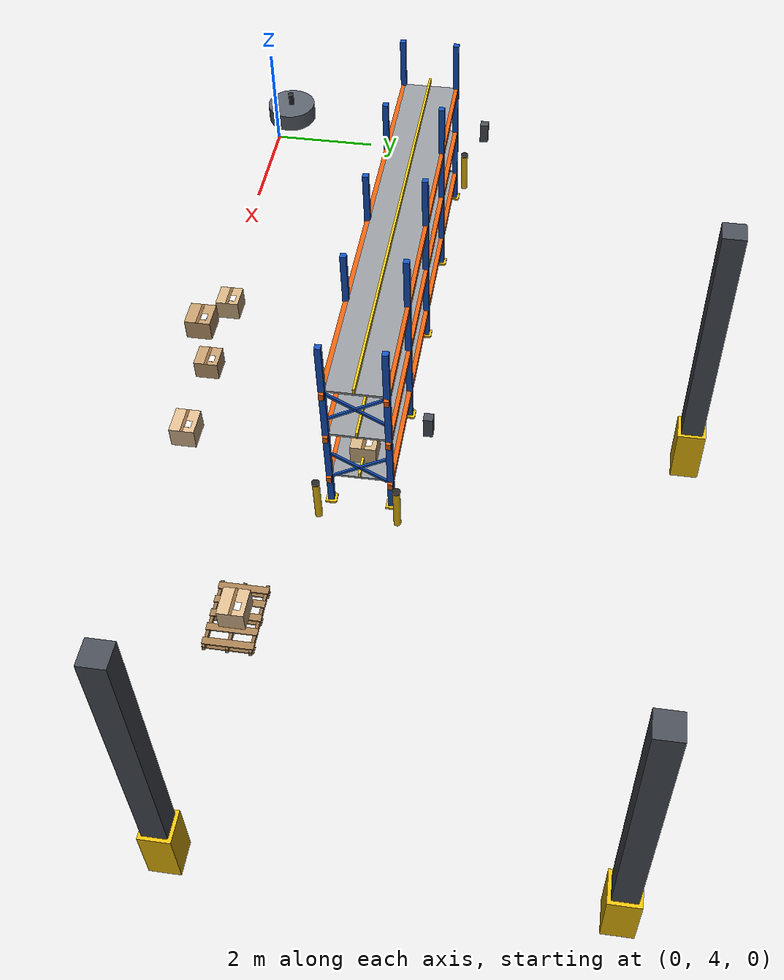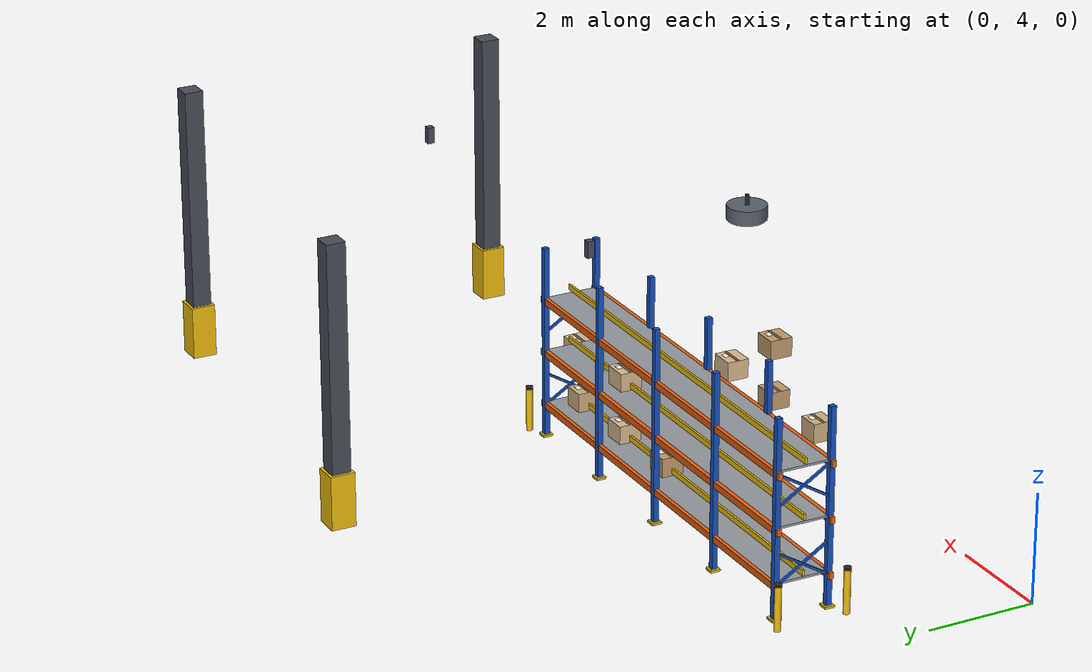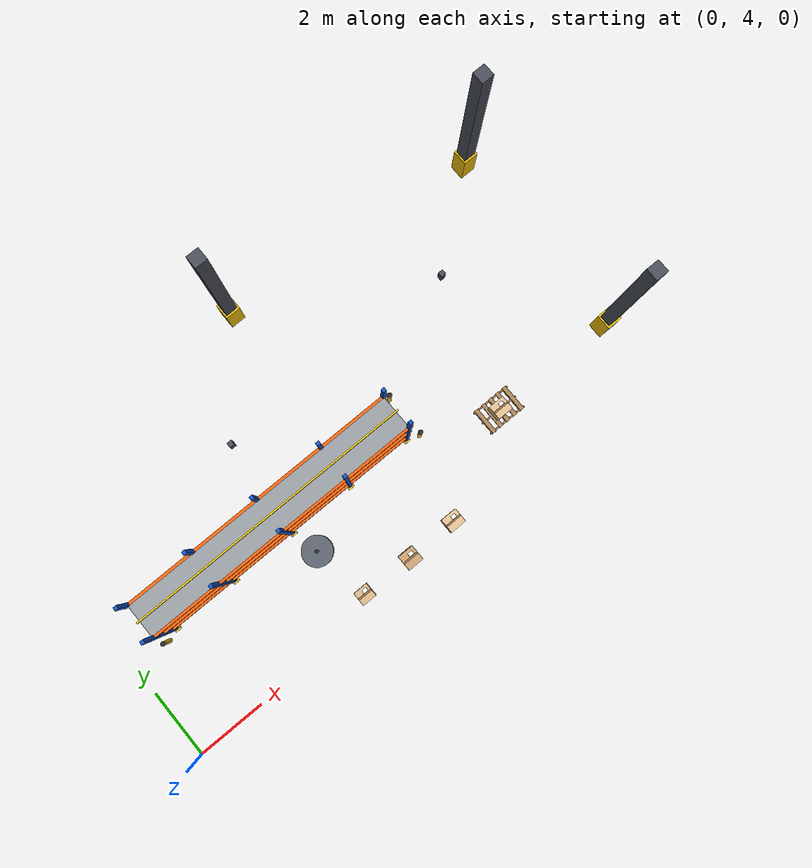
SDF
<sdf version="1.8">
 <world name="warehouse_3d">
  <model name="warehouse_architecture">
   <static>true</static>
   <link name="col_7_base">
    <pose>15.7500 6.0000 0.5000 0.0000 0.0000 0.0000</pose>
    <collision name="col_7_base_col"><geometry><box><size>0.4500 0.4500 1.0000</size></box></geometry></collision>
    <visual name="col_7_base_vis">
     <geometry><box><size>0.4500 0.4500 1.0000</size></box></geometry>
     <material>
      <ambient>0.617 0.488 0.033 1.00</ambient>
      <diffuse>0.950 0.750 0.050 1.00</diffuse>
      <specular>0.15 0.15 0.15 1.0</specular>
     </material>
    </visual>
   </link>
   <link name="col_7_stem">
    <pose>15.7500 6.0000 3.1000 0.0000 0.0000 0.0000</pose>
    <collision name="col_7_stem_col"><geometry><box><size>0.3500 0.3500 4.2000</size></box></geometry></collision>
    <visual name="col_7_stem_vis">
     <geometry><box><size>0.3500 0.3500 4.2000</size></box></geometry>
     <material>
      <ambient>0.182 0.195 0.221 1.00</ambient>
      <diffuse>0.280 0.300 0.340 1.00</diffuse>
      <specular>0.15 0.15 0.15 1.0</specular>
     </material>
    </visual>
   </link>
   <link name="col_8_base">
    <pose>15.7500 12.0000 0.5000 0.0000 0.0000 0.0000</pose>
    <collision name="col_8_base_col"><geometry><box><size>0.4500 0.4500 1.0000</size></box></geometry></collision>
    <visual name="col_8_base_vis">
     <geometry><box><size>0.4500 0.4500 1.0000</size></box></geometry>
     <material>
      <ambient>0.617 0.488 0.033 1.00</ambient>
      <diffuse>0.950 0.750 0.050 1.00</diffuse>
      <specular>0.15 0.15 0.15 1.0</specular>
     </material>
    </visual>
   </link>
   <link name="col_8_stem">
    <pose>15.7500 12.0000 3.1000 0.0000 0.0000 0.0000</pose>
    <collision name="col_8_stem_col"><geometry><box><size>0.3500 0.3500 4.2000</size></box></geometry></collision>
    <visual name="col_8_stem_vis">
     <geometry><box><size>0.3500 0.3500 4.2000</size></box></geometry>
     <material>
      <ambient>0.182 0.195 0.221 1.00</ambient>
      <diffuse>0.280 0.300 0.340 1.00</diffuse>
      <specular>0.15 0.15 0.15 1.0</specular>
     </material>
    </visual>
   </link>
   <link name="col_11_base">
    <pose>8.0000 12.7500 0.5000 0.0000 0.0000 0.0000</pose>
    <collision name="col_11_base_col">
     <geometry><box><size>0.4500 0.4500 1.0000</size></box></geometry>
    </collision>
    <visual name="col_11_base_vis">
     <geometry><box><size>0.4500 0.4500 1.0000</size></box></geometry>
     <material>
      <ambient>0.617 0.488 0.033 1.00</ambient>
      <diffuse>0.950 0.750 0.050 1.00</diffuse>
      <specular>0.15 0.15 0.15 1.0</specular>
     </material>
    </visual>
   </link>
   <link name="col_11_stem">
    <pose>8.0000 12.7500 3.1000 0.0000 0.0000 0.0000</pose>
    <collision name="col_11_stem_col">
     <geometry><box><size>0.3500 0.3500 4.2000</size></box></geometry>
    </collision>
    <visual name="col_11_stem_vis">
     <geometry><box><size>0.3500 0.3500 4.2000</size></box></geometry>
     <material>
      <ambient>0.182 0.195 0.221 1.00</ambient>
      <diffuse>0.280 0.300 0.340 1.00</diffuse>
      <specular>0.15 0.15 0.15 1.0</specular>
     </material>
    </visual>
   </link>
   <link name="truss_web_3_3">
    <pose>6.0000 9.0000 5.0500 0.0000 0.0000 0.0000</pose>
    <visual name="truss_web_3_3_vis">
     <geometry><box><size>0.1200 0.1200 0.3000</size></box></geometry>
     <material>
      <ambient>0.182 0.195 0.221 1.00</ambient>
      <diffuse>0.280 0.300 0.340 1.00</diffuse>
      <specular>0.15 0.15 0.15 1.0</specular>
     </material>
    </visual>
   </link>
   <link name="truss_web_3_4">
    <pose>12.0000 9.0000 5.0500 0.0000 0.0000 0.0000</pose>
    <visual name="truss_web_3_4_vis">
     <geometry><box><size>0.1200 0.1200 0.3000</size></box></geometry>
     <material>
      <ambient>0.182 0.195 0.221 1.00</ambient>
      <diffuse>0.280 0.300 0.340 1.00</diffuse>
      <specular>0.15 0.15 0.15 1.0</specular>
     </material>
    </visual>
   </link>
   <link name="fixture_bell_8">
    <pose>6.0000 6.0000 5.1500 0.0000 0.0000 0.0000</pose>
    <visual name="fixture_bell_8_vis">
     <geometry><cylinder><radius>0.3500</radius><length>0.2500</length></cylinder></geometry>
     <material>
      <ambient>0.227 0.247 0.273 1.00</ambient>
      <diffuse>0.350 0.380 0.420 1.00</diffuse>
      <specular>0.2 0.2 0.2 1.0</specular>
     </material>
    </visual>
   </link>
   <link name="fixture_stem_8">
    <pose>6.0000 6.0000 5.3500 0.0000 0.0000 0.0000</pose>
    <visual name="fixture_stem_8_vis">
     <geometry><cylinder><radius>0.0400</radius><length>0.2000</length></cylinder></geometry>
     <material>
      <ambient>0.098 0.098 0.117 1.00</ambient>
      <diffuse>0.150 0.150 0.180 1.00</diffuse>
      <specular>0.2 0.2 0.2 1.0</specular>
     </material>
    </visual>
   </link>
   <link name="fixture_lens_8">
    <pose>6.0000 6.0000 5.0200 0.0000 0.0000 0.0000</pose>
    <visual name="fixture_lens_8_vis">
     <geometry><cylinder><radius>0.3200</radius><length>0.0400</length></cylinder></geometry>
     <material>
      <ambient>0.617 0.637 0.650 1.00</ambient>
      <diffuse>0.950 0.980 1.000 1.00</diffuse>
      <specular>0.2 0.2 0.2 1.0</specular>
      <emissive>0.850 0.880 0.950 1.0</emissive>
     </material>
    </visual>
   </link>
  </model>
  <model name="Rack_F_East">
   <static>true</static>
   <pose>5.50 7.50 0 0 0 0</pose>
   <link name="col_0_0">
    <pose>-4.0000 -0.5000 1.8000 0.0000 0.0000 0.0000</pose>
    <collision name="col_0_0_col"><geometry><box><size>0.1000 0.1000 3.6000</size></box></geometry></collision>
    <visual name="col_0_0_vis">
     <geometry><box><size>0.1000 0.1000 3.6000</size></box></geometry>
     <material>
      <ambient>0.052 0.208 0.488 1.00</ambient>
      <diffuse>0.080 0.320 0.750 1.00</diffuse>
      <specular>0.15 0.15 0.15 1.0</specular>
     </material>
    </visual>
   </link>
   <link name="foot_0_0">
    <pose>-4.0000 -0.5000 0.0200 0.0000 0.0000 0.0000</pose>
    <collision name="foot_0_0_col"><geometry><box><size>0.1800 0.1800 0.0400</size></box></geometry></collision>
    <visual name="foot_0_0_vis">
     <geometry><box><size>0.1800 0.1800 0.0400</size></box></geometry>
     <material>
      <ambient>0.617 0.488 0.033 1.00</ambient>
      <diffuse>0.950 0.750 0.050 1.00</diffuse>
      <specular>0.15 0.15 0.15 1.0</specular>
     </material>
    </visual>
   </link>
   <link name="col_0_1">
    <pose>-4.0000 0.5000 1.8000 0.0000 0.0000 0.0000</pose>
    <collision name="col_0_1_col"><geometry><box><size>0.1000 0.1000 3.6000</size></box></geometry></collision>
    <visual name="col_0_1_vis">
     <geometry><box><size>0.1000 0.1000 3.6000</size></box></geometry>
     <material>
      <ambient>0.052 0.208 0.488 1.00</ambient>
      <diffuse>0.080 0.320 0.750 1.00</diffuse>
      <specular>0.15 0.15 0.15 1.0</specular>
     </material>
    </visual>
   </link>
   <link name="foot_0_1">
    <pose>-4.0000 0.5000 0.0200 0.0000 0.0000 0.0000</pose>
    <collision name="foot_0_1_col"><geometry><box><size>0.1800 0.1800 0.0400</size></box></geometry></collision>
    <visual name="foot_0_1_vis">
     <geometry><box><size>0.1800 0.1800 0.0400</size></box></geometry>
     <material>
      <ambient>0.617 0.488 0.033 1.00</ambient>
      <diffuse>0.950 0.750 0.050 1.00</diffuse>
      <specular>0.15 0.15 0.15 1.0</specular>
     </material>
    </visual>
   </link>
   <link name="col_1_0">
    <pose>-2.0000 -0.5000 1.8000 0.0000 0.0000 0.0000</pose>
    <collision name="col_1_0_col"><geometry><box><size>0.1000 0.1000 3.6000</size></box></geometry></collision>
    <visual name="col_1_0_vis">
     <geometry><box><size>0.1000 0.1000 3.6000</size></box></geometry>
     <material>
      <ambient>0.052 0.208 0.488 1.00</ambient>
      <diffuse>0.080 0.320 0.750 1.00</diffuse>
      <specular>0.15 0.15 0.15 1.0</specular>
     </material>
    </visual>
   </link>
   <link name="foot_1_0">
    <pose>-2.0000 -0.5000 0.0200 0.0000 0.0000 0.0000</pose>
    <collision name="foot_1_0_col"><geometry><box><size>0.1800 0.1800 0.0400</size></box></geometry></collision>
    <visual name="foot_1_0_vis">
     <geometry><box><size>0.1800 0.1800 0.0400</size></box></geometry>
     <material>
      <ambient>0.617 0.488 0.033 1.00</ambient>
      <diffuse>0.950 0.750 0.050 1.00</diffuse>
      <specular>0.15 0.15 0.15 1.0</specular>
     </material>
    </visual>
   </link>
   <link name="col_1_1">
    <pose>-2.0000 0.5000 1.8000 0.0000 0.0000 0.0000</pose>
    <collision name="col_1_1_col"><geometry><box><size>0.1000 0.1000 3.6000</size></box></geometry></collision>
    <visual name="col_1_1_vis">
     <geometry><box><size>0.1000 0.1000 3.6000</size></box></geometry>
     <material>
      <ambient>0.052 0.208 0.488 1.00</ambient>
      <diffuse>0.080 0.320 0.750 1.00</diffuse>
      <specular>0.15 0.15 0.15 1.0</specular>
     </material>
    </visual>
   </link>
   <link name="foot_1_1">
    <pose>-2.0000 0.5000 0.0200 0.0000 0.0000 0.0000</pose>
    <collision name="foot_1_1_col"><geometry><box><size>0.1800 0.1800 0.0400</size></box></geometry></collision>
    <visual name="foot_1_1_vis">
     <geometry><box><size>0.1800 0.1800 0.0400</size></box></geometry>
     <material>
      <ambient>0.617 0.488 0.033 1.00</ambient>
      <diffuse>0.950 0.750 0.050 1.00</diffuse>
      <specular>0.15 0.15 0.15 1.0</specular>
     </material>
    </visual>
   </link>
   <link name="col_2_0">
    <pose>0.0000 -0.5000 1.8000 0.0000 0.0000 0.0000</pose>
    <collision name="col_2_0_col"><geometry><box><size>0.1000 0.1000 3.6000</size></box></geometry></collision>
    <visual name="col_2_0_vis">
     <geometry><box><size>0.1000 0.1000 3.6000</size></box></geometry>
     <material>
      <ambient>0.052 0.208 0.488 1.00</ambient>
      <diffuse>0.080 0.320 0.750 1.00</diffuse>
      <specular>0.15 0.15 0.15 1.0</specular>
     </material>
    </visual>
   </link>
   <link name="foot_2_0">
    <pose>0.0000 -0.5000 0.0200 0.0000 0.0000 0.0000</pose>
    <collision name="foot_2_0_col"><geometry><box><size>0.1800 0.1800 0.0400</size></box></geometry></collision>
    <visual name="foot_2_0_vis">
     <geometry><box><size>0.1800 0.1800 0.0400</size></box></geometry>
     <material>
      <ambient>0.617 0.488 0.033 1.00</ambient>
      <diffuse>0.950 0.750 0.050 1.00</diffuse>
      <specular>0.15 0.15 0.15 1.0</specular>
     </material>
    </visual>
   </link>
   <link name="col_2_1">
    <pose>0.0000 0.5000 1.8000 0.0000 0.0000 0.0000</pose>
    <collision name="col_2_1_col"><geometry><box><size>0.1000 0.1000 3.6000</size></box></geometry></collision>
    <visual name="col_2_1_vis">
     <geometry><box><size>0.1000 0.1000 3.6000</size></box></geometry>
     <material>
      <ambient>0.052 0.208 0.488 1.00</ambient>
      <diffuse>0.080 0.320 0.750 1.00</diffuse>
      <specular>0.15 0.15 0.15 1.0</specular>
     </material>
    </visual>
   </link>
   <link name="foot_2_1">
    <pose>0.0000 0.5000 0.0200 0.0000 0.0000 0.0000</pose>
    <collision name="foot_2_1_col"><geometry><box><size>0.1800 0.1800 0.0400</size></box></geometry></collision>
    <visual name="foot_2_1_vis">
     <geometry><box><size>0.1800 0.1800 0.0400</size></box></geometry>
     <material>
      <ambient>0.617 0.488 0.033 1.00</ambient>
      <diffuse>0.950 0.750 0.050 1.00</diffuse>
      <specular>0.15 0.15 0.15 1.0</specular>
     </material>
    </visual>
   </link>
   <link name="col_3_0">
    <pose>2.0000 -0.5000 1.8000 0.0000 0.0000 0.0000</pose>
    <collision name="col_3_0_col"><geometry><box><size>0.1000 0.1000 3.6000</size></box></geometry></collision>
    <visual name="col_3_0_vis">
     <geometry><box><size>0.1000 0.1000 3.6000</size></box></geometry>
     <material>
      <ambient>0.052 0.208 0.488 1.00</ambient>
      <diffuse>0.080 0.320 0.750 1.00</diffuse>
      <specular>0.15 0.15 0.15 1.0</specular>
     </material>
    </visual>
   </link>
   <link name="foot_3_0">
    <pose>2.0000 -0.5000 0.0200 0.0000 0.0000 0.0000</pose>
    <collision name="foot_3_0_col"><geometry><box><size>0.1800 0.1800 0.0400</size></box></geometry></collision>
    <visual name="foot_3_0_vis">
     <geometry><box><size>0.1800 0.1800 0.0400</size></box></geometry>
     <material>
      <ambient>0.617 0.488 0.033 1.00</ambient>
      <diffuse>0.950 0.750 0.050 1.00</diffuse>
      <specular>0.15 0.15 0.15 1.0</specular>
     </material>
    </visual>
   </link>
   <link name="col_3_1">
    <pose>2.0000 0.5000 1.8000 0.0000 0.0000 0.0000</pose>
    <collision name="col_3_1_col"><geometry><box><size>0.1000 0.1000 3.6000</size></box></geometry></collision>
    <visual name="col_3_1_vis">
     <geometry><box><size>0.1000 0.1000 3.6000</size></box></geometry>
     <material>
      <ambient>0.052 0.208 0.488 1.00</ambient>
      <diffuse>0.080 0.320 0.750 1.00</diffuse>
      <specular>0.15 0.15 0.15 1.0</specular>
     </material>
    </visual>
   </link>
   <link name="foot_3_1">
    <pose>2.0000 0.5000 0.0200 0.0000 0.0000 0.0000</pose>
    <collision name="foot_3_1_col"><geometry><box><size>0.1800 0.1800 0.0400</size></box></geometry></collision>
    <visual name="foot_3_1_vis">
     <geometry><box><size>0.1800 0.1800 0.0400</size></box></geometry>
     <material>
      <ambient>0.617 0.488 0.033 1.00</ambient>
      <diffuse>0.950 0.750 0.050 1.00</diffuse>
      <specular>0.15 0.15 0.15 1.0</specular>
     </material>
    </visual>
   </link>
   <link name="col_4_0">
    <pose>4.0000 -0.5000 1.8000 0.0000 0.0000 0.0000</pose>
    <collision name="col_4_0_col"><geometry><box><size>0.1000 0.1000 3.6000</size></box></geometry></collision>
    <visual name="col_4_0_vis">
     <geometry><box><size>0.1000 0.1000 3.6000</size></box></geometry>
     <material>
      <ambient>0.052 0.208 0.488 1.00</ambient>
      <diffuse>0.080 0.320 0.750 1.00</diffuse>
      <specular>0.15 0.15 0.15 1.0</specular>
     </material>
    </visual>
   </link>
   <link name="foot_4_0">
    <pose>4.0000 -0.5000 0.0200 0.0000 0.0000 0.0000</pose>
    <collision name="foot_4_0_col"><geometry><box><size>0.1800 0.1800 0.0400</size></box></geometry></collision>
    <visual name="foot_4_0_vis">
     <geometry><box><size>0.1800 0.1800 0.0400</size></box></geometry>
     <material>
      <ambient>0.617 0.488 0.033 1.00</ambient>
      <diffuse>0.950 0.750 0.050 1.00</diffuse>
      <specular>0.15 0.15 0.15 1.0</specular>
     </material>
    </visual>
   </link>
   <link name="col_4_1">
    <pose>4.0000 0.5000 1.8000 0.0000 0.0000 0.0000</pose>
    <collision name="col_4_1_col"><geometry><box><size>0.1000 0.1000 3.6000</size></box></geometry></collision>
    <visual name="col_4_1_vis">
     <geometry><box><size>0.1000 0.1000 3.6000</size></box></geometry>
     <material>
      <ambient>0.052 0.208 0.488 1.00</ambient>
      <diffuse>0.080 0.320 0.750 1.00</diffuse>
      <specular>0.15 0.15 0.15 1.0</specular>
     </material>
    </visual>
   </link>
   <link name="foot_4_1">
    <pose>4.0000 0.5000 0.0200 0.0000 0.0000 0.0000</pose>
    <collision name="foot_4_1_col"><geometry><box><size>0.1800 0.1800 0.0400</size></box></geometry></collision>
    <visual name="foot_4_1_vis">
     <geometry><box><size>0.1800 0.1800 0.0400</size></box></geometry>
     <material>
      <ambient>0.617 0.488 0.033 1.00</ambient>
      <diffuse>0.950 0.750 0.050 1.00</diffuse>
      <specular>0.15 0.15 0.15 1.0</specular>
     </material>
    </visual>
   </link>
   <link name="x_brace_low_1_w">
    <pose>-4.0000 0.0000 0.9000 0.5500 0.0000 0.0000</pose>
    <visual name="x_brace_low_1_w_vis">
     <geometry><box><size>0.0400 1.0500 0.0400</size></box></geometry>
     <material>
      <ambient>0.052 0.208 0.488 1.00</ambient>
      <diffuse>0.080 0.320 0.750 1.00</diffuse>
      <specular>0.15 0.15 0.15 1.0</specular>
     </material>
    </visual>
   </link>
   <link name="x_brace_low_2_w">
    <pose>-4.0000 0.0000 0.9000 -0.5500 0.0000 0.0000</pose>
    <visual name="x_brace_low_2_w_vis">
     <geometry><box><size>0.0400 1.0500 0.0400</size></box></geometry>
     <material>
      <ambient>0.052 0.208 0.488 1.00</ambient>
      <diffuse>0.080 0.320 0.750 1.00</diffuse>
      <specular>0.15 0.15 0.15 1.0</specular>
     </material>
    </visual>
   </link>
   <link name="x_brace_hi_1_w">
    <pose>-4.0000 0.0000 2.3000 0.5500 0.0000 0.0000</pose>
    <visual name="x_brace_hi_1_w_vis">
     <geometry><box><size>0.0400 1.0500 0.0400</size></box></geometry>
     <material>
      <ambient>0.052 0.208 0.488 1.00</ambient>
      <diffuse>0.080 0.320 0.750 1.00</diffuse>
      <specular>0.15 0.15 0.15 1.0</specular>
     </material>
    </visual>
   </link>
   <link name="x_brace_hi_2_w">
    <pose>-4.0000 0.0000 2.3000 -0.5500 0.0000 0.0000</pose>
    <visual name="x_brace_hi_2_w_vis">
     <geometry><box><size>0.0400 1.0500 0.0400</size></box></geometry>
     <material>
      <ambient>0.052 0.208 0.488 1.00</ambient>
      <diffuse>0.080 0.320 0.750 1.00</diffuse>
      <specular>0.15 0.15 0.15 1.0</specular>
     </material>
    </visual>
   </link>
   <link name="x_brace_low_1_e">
    <pose>4.0000 0.0000 0.9000 0.5500 0.0000 0.0000</pose>
    <visual name="x_brace_low_1_e_vis">
     <geometry><box><size>0.0400 1.0500 0.0400</size></box></geometry>
     <material>
      <ambient>0.052 0.208 0.488 1.00</ambient>
      <diffuse>0.080 0.320 0.750 1.00</diffuse>
      <specular>0.15 0.15 0.15 1.0</specular>
     </material>
    </visual>
   </link>
   <link name="x_brace_low_2_e">
    <pose>4.0000 0.0000 0.9000 -0.5500 0.0000 0.0000</pose>
    <visual name="x_brace_low_2_e_vis">
     <geometry><box><size>0.0400 1.0500 0.0400</size></box></geometry>
     <material>
      <ambient>0.052 0.208 0.488 1.00</ambient>
      <diffuse>0.080 0.320 0.750 1.00</diffuse>
      <specular>0.15 0.15 0.15 1.0</specular>
     </material>
    </visual>
   </link>
   <link name="x_brace_hi_1_e">
    <pose>4.0000 0.0000 2.3000 0.5500 0.0000 0.0000</pose>
    <visual name="x_brace_hi_1_e_vis">
     <geometry><box><size>0.0400 1.0500 0.0400</size></box></geometry>
     <material>
      <ambient>0.052 0.208 0.488 1.00</ambient>
      <diffuse>0.080 0.320 0.750 1.00</diffuse>
      <specular>0.15 0.15 0.15 1.0</specular>
     </material>
    </visual>
   </link>
   <link name="x_brace_hi_2_e">
    <pose>4.0000 0.0000 2.3000 -0.5500 0.0000 0.0000</pose>
    <visual name="x_brace_hi_2_e_vis">
     <geometry><box><size>0.0400 1.0500 0.0400</size></box></geometry>
     <material>
      <ambient>0.052 0.208 0.488 1.00</ambient>
      <diffuse>0.080 0.320 0.750 1.00</diffuse>
      <specular>0.15 0.15 0.15 1.0</specular>
     </material>
    </visual>
   </link>
   <link name="beam_front_0">
    <pose>0.0000 0.5000 0.6000 0.0000 0.0000 0.0000</pose>
    <collision name="beam_front_0_col">
     <geometry><box><size>8.2000 0.0800 0.1200</size></box></geometry>
    </collision>
    <visual name="beam_front_0_vis">
     <geometry><box><size>8.2000 0.0800 0.1200</size></box></geometry>
     <material>
      <ambient>0.598 0.247 0.039 1.00</ambient>
      <diffuse>0.920 0.380 0.060 1.00</diffuse>
      <specular>0.15 0.15 0.15 1.0</specular>
     </material>
    </visual>
   </link>
   <link name="beam_rear_0">
    <pose>0.0000 -0.5000 0.6000 0.0000 0.0000 0.0000</pose>
    <collision name="beam_rear_0_col">
     <geometry><box><size>8.2000 0.0800 0.1200</size></box></geometry>
    </collision>
    <visual name="beam_rear_0_vis">
     <geometry><box><size>8.2000 0.0800 0.1200</size></box></geometry>
     <material>
      <ambient>0.598 0.247 0.039 1.00</ambient>
      <diffuse>0.920 0.380 0.060 1.00</diffuse>
      <specular>0.15 0.15 0.15 1.0</specular>
     </material>
    </visual>
   </link>
   <link name="deck_0">
    <pose>0.0000 0.0000 0.6400 0.0000 0.0000 0.0000</pose>
    <collision name="deck_0_col"><geometry><box><size>8.0000 0.9400 0.0400</size></box></geometry></collision>
    <visual name="deck_0_vis">
     <geometry><box><size>8.0000 0.9400 0.0400</size></box></geometry>
     <material>
      <ambient>0.377 0.390 0.403 1.00</ambient>
      <diffuse>0.580 0.600 0.620 1.00</diffuse>
      <specular>0.15 0.15 0.15 1.0</specular>
     </material>
    </visual>
   </link>
   <link name="backstop_0">
    <pose>0.0000 0.0000 0.7500 0.0000 0.0000 0.0000</pose>
    <visual name="backstop_0_vis">
     <geometry><box><size>8.1000 0.0400 0.1000</size></box></geometry>
     <material>
      <ambient>0.617 0.507 0.033 1.00</ambient>
      <diffuse>0.950 0.780 0.050 1.00</diffuse>
      <specular>0.15 0.15 0.15 1.0</specular>
     </material>
    </visual>
   </link>
   <link name="beam_front_1">
    <pose>0.0000 0.5000 1.6000 0.0000 0.0000 0.0000</pose>
    <collision name="beam_front_1_col">
     <geometry><box><size>8.2000 0.0800 0.1200</size></box></geometry>
    </collision>
    <visual name="beam_front_1_vis">
     <geometry><box><size>8.2000 0.0800 0.1200</size></box></geometry>
     <material>
      <ambient>0.598 0.247 0.039 1.00</ambient>
      <diffuse>0.920 0.380 0.060 1.00</diffuse>
      <specular>0.15 0.15 0.15 1.0</specular>
     </material>
    </visual>
   </link>
   <link name="beam_rear_1">
    <pose>0.0000 -0.5000 1.6000 0.0000 0.0000 0.0000</pose>
    <collision name="beam_rear_1_col">
     <geometry><box><size>8.2000 0.0800 0.1200</size></box></geometry>
    </collision>
    <visual name="beam_rear_1_vis">
     <geometry><box><size>8.2000 0.0800 0.1200</size></box></geometry>
     <material>
      <ambient>0.598 0.247 0.039 1.00</ambient>
      <diffuse>0.920 0.380 0.060 1.00</diffuse>
      <specular>0.15 0.15 0.15 1.0</specular>
     </material>
    </visual>
   </link>
   <link name="deck_1">
    <pose>0.0000 0.0000 1.6400 0.0000 0.0000 0.0000</pose>
    <collision name="deck_1_col"><geometry><box><size>8.0000 0.9400 0.0400</size></box></geometry></collision>
    <visual name="deck_1_vis">
     <geometry><box><size>8.0000 0.9400 0.0400</size></box></geometry>
     <material>
      <ambient>0.377 0.390 0.403 1.00</ambient>
      <diffuse>0.580 0.600 0.620 1.00</diffuse>
      <specular>0.15 0.15 0.15 1.0</specular>
     </material>
    </visual>
   </link>
   <link name="backstop_1">
    <pose>0.0000 0.0000 1.7500 0.0000 0.0000 0.0000</pose>
    <visual name="backstop_1_vis">
     <geometry><box><size>8.1000 0.0400 0.1000</size></box></geometry>
     <material>
      <ambient>0.617 0.507 0.033 1.00</ambient>
      <diffuse>0.950 0.780 0.050 1.00</diffuse>
      <specular>0.15 0.15 0.15 1.0</specular>
     </material>
    </visual>
   </link>
   <link name="beam_front_2">
    <pose>0.0000 0.5000 2.6000 0.0000 0.0000 0.0000</pose>
    <collision name="beam_front_2_col">
     <geometry><box><size>8.2000 0.0800 0.1200</size></box></geometry>
    </collision>
    <visual name="beam_front_2_vis">
     <geometry><box><size>8.2000 0.0800 0.1200</size></box></geometry>
     <material>
      <ambient>0.598 0.247 0.039 1.00</ambient>
      <diffuse>0.920 0.380 0.060 1.00</diffuse>
      <specular>0.15 0.15 0.15 1.0</specular>
     </material>
    </visual>
   </link>
   <link name="beam_rear_2">
    <pose>0.0000 -0.5000 2.6000 0.0000 0.0000 0.0000</pose>
    <collision name="beam_rear_2_col">
     <geometry><box><size>8.2000 0.0800 0.1200</size></box></geometry>
    </collision>
    <visual name="beam_rear_2_vis">
     <geometry><box><size>8.2000 0.0800 0.1200</size></box></geometry>
     <material>
      <ambient>0.598 0.247 0.039 1.00</ambient>
      <diffuse>0.920 0.380 0.060 1.00</diffuse>
      <specular>0.15 0.15 0.15 1.0</specular>
     </material>
    </visual>
   </link>
   <link name="deck_2">
    <pose>0.0000 0.0000 2.6400 0.0000 0.0000 0.0000</pose>
    <collision name="deck_2_col"><geometry><box><size>8.0000 0.9400 0.0400</size></box></geometry></collision>
    <visual name="deck_2_vis">
     <geometry><box><size>8.0000 0.9400 0.0400</size></box></geometry>
     <material>
      <ambient>0.377 0.390 0.403 1.00</ambient>
      <diffuse>0.580 0.600 0.620 1.00</diffuse>
      <specular>0.15 0.15 0.15 1.0</specular>
     </material>
    </visual>
   </link>
   <link name="backstop_2">
    <pose>0.0000 0.0000 2.7500 0.0000 0.0000 0.0000</pose>
    <visual name="backstop_2_vis">
     <geometry><box><size>8.1000 0.0400 0.1000</size></box></geometry>
     <material>
      <ambient>0.617 0.507 0.033 1.00</ambient>
      <diffuse>0.950 0.780 0.050 1.00</diffuse>
      <specular>0.15 0.15 0.15 1.0</specular>
     </material>
    </visual>
   </link>
   <link name="bollard_0">
    <pose>-4.3500 -0.6500 0.4000 0.0000 0.0000 0.0000</pose>
    <collision name="bollard_0_col">
     <geometry><cylinder><radius>0.0600</radius><length>0.8000</length></cylinder></geometry>
    </collision>
    <visual name="bollard_0_vis">
     <geometry><cylinder><radius>0.0600</radius><length>0.8000</length></cylinder></geometry>
     <material>
      <ambient>0.617 0.488 0.033 1.00</ambient>
      <diffuse>0.950 0.750 0.050 1.00</diffuse>
      <specular>0.2 0.2 0.2 1.0</specular>
     </material>
    </visual>
   </link>
   <link name="bollard_cap_0">
    <pose>-4.3500 -0.6500 0.8200 0.0000 0.0000 0.0000</pose>
    <collision name="bollard_cap_0_col">
     <geometry><cylinder><radius>0.0650</radius><length>0.0400</length></cylinder></geometry>
    </collision>
    <visual name="bollard_cap_0_vis">
     <geometry><cylinder><radius>0.0650</radius><length>0.0400</length></cylinder></geometry>
     <material>
      <ambient>0.098 0.098 0.098 1.00</ambient>
      <diffuse>0.150 0.150 0.150 1.00</diffuse>
      <specular>0.2 0.2 0.2 1.0</specular>
     </material>
    </visual>
   </link>
   <link name="bollard_1">
    <pose>-4.3500 0.6500 0.4000 0.0000 0.0000 0.0000</pose>
    <collision name="bollard_1_col">
     <geometry><cylinder><radius>0.0600</radius><length>0.8000</length></cylinder></geometry>
    </collision>
    <visual name="bollard_1_vis">
     <geometry><cylinder><radius>0.0600</radius><length>0.8000</length></cylinder></geometry>
     <material>
      <ambient>0.617 0.488 0.033 1.00</ambient>
      <diffuse>0.950 0.750 0.050 1.00</diffuse>
      <specular>0.2 0.2 0.2 1.0</specular>
     </material>
    </visual>
   </link>
   <link name="bollard_cap_1">
    <pose>-4.3500 0.6500 0.8200 0.0000 0.0000 0.0000</pose>
    <collision name="bollard_cap_1_col">
     <geometry><cylinder><radius>0.0650</radius><length>0.0400</length></cylinder></geometry>
    </collision>
    <visual name="bollard_cap_1_vis">
     <geometry><cylinder><radius>0.0650</radius><length>0.0400</length></cylinder></geometry>
     <material>
      <ambient>0.098 0.098 0.098 1.00</ambient>
      <diffuse>0.150 0.150 0.150 1.00</diffuse>
      <specular>0.2 0.2 0.2 1.0</specular>
     </material>
    </visual>
   </link>
   <link name="bollard_2">
    <pose>4.3500 -0.6500 0.4000 0.0000 0.0000 0.0000</pose>
    <collision name="bollard_2_col">
     <geometry><cylinder><radius>0.0600</radius><length>0.8000</length></cylinder></geometry>
    </collision>
    <visual name="bollard_2_vis">
     <geometry><cylinder><radius>0.0600</radius><length>0.8000</length></cylinder></geometry>
     <material>
      <ambient>0.617 0.488 0.033 1.00</ambient>
      <diffuse>0.950 0.750 0.050 1.00</diffuse>
      <specular>0.2 0.2 0.2 1.0</specular>
     </material>
    </visual>
   </link>
   <link name="bollard_cap_2">
    <pose>4.3500 -0.6500 0.8200 0.0000 0.0000 0.0000</pose>
    <collision name="bollard_cap_2_col">
     <geometry><cylinder><radius>0.0650</radius><length>0.0400</length></cylinder></geometry>
    </collision>
    <visual name="bollard_cap_2_vis">
     <geometry><cylinder><radius>0.0650</radius><length>0.0400</length></cylinder></geometry>
     <material>
      <ambient>0.098 0.098 0.098 1.00</ambient>
      <diffuse>0.150 0.150 0.150 1.00</diffuse>
      <specular>0.2 0.2 0.2 1.0</specular>
     </material>
    </visual>
   </link>
   <link name="bollard_3">
    <pose>4.3500 0.6500 0.4000 0.0000 0.0000 0.0000</pose>
    <collision name="bollard_3_col">
     <geometry><cylinder><radius>0.0600</radius><length>0.8000</length></cylinder></geometry>
    </collision>
    <visual name="bollard_3_vis">
     <geometry><cylinder><radius>0.0600</radius><length>0.8000</length></cylinder></geometry>
     <material>
      <ambient>0.617 0.488 0.033 1.00</ambient>
      <diffuse>0.950 0.750 0.050 1.00</diffuse>
      <specular>0.2 0.2 0.2 1.0</specular>
     </material>
    </visual>
   </link>
   <link name="bollard_cap_3">
    <pose>4.3500 0.6500 0.8200 0.0000 0.0000 0.0000</pose>
    <collision name="bollard_cap_3_col">
     <geometry><cylinder><radius>0.0650</radius><length>0.0400</length></cylinder></geometry>
    </collision>
    <visual name="bollard_cap_3_vis">
     <geometry><cylinder><radius>0.0650</radius><length>0.0400</length></cylinder></geometry>
     <material>
      <ambient>0.098 0.098 0.098 1.00</ambient>
      <diffuse>0.150 0.150 0.150 1.00</diffuse>
      <specular>0.2 0.2 0.2 1.0</specular>
     </material>
    </visual>
   </link>
  </model>
  <model name="pallet_aisle_end2">
   <static>true</static>
   <pose>12.00 6.00 0.00 0 0 0</pose>
   <link name="stringer_0">
    <pose>0.0000 -0.3600 0.0650 0.0000 0.0000 0.0000</pose>
    <collision name="stringer_0_col"><geometry><box><size>1.2000 0.0500 0.0900</size></box></geometry></collision>
    <visual name="stringer_0_vis">
     <geometry><box><size>1.2000 0.0500 0.0900</size></box></geometry>
     <material>
      <ambient>0.377 0.286 0.182 1.00</ambient>
      <diffuse>0.580 0.440 0.280 1.00</diffuse>
      <specular>0.15 0.15 0.15 1.0</specular>
     </material>
    </visual>
   </link>
   <link name="stringer_1">
    <pose>0.0000 0.0000 0.0650 0.0000 0.0000 0.0000</pose>
    <collision name="stringer_1_col"><geometry><box><size>1.2000 0.0500 0.0900</size></box></geometry></collision>
    <visual name="stringer_1_vis">
     <geometry><box><size>1.2000 0.0500 0.0900</size></box></geometry>
     <material>
      <ambient>0.377 0.286 0.182 1.00</ambient>
      <diffuse>0.580 0.440 0.280 1.00</diffuse>
      <specular>0.15 0.15 0.15 1.0</specular>
     </material>
    </visual>
   </link>
   <link name="stringer_2">
    <pose>0.0000 0.3600 0.0650 0.0000 0.0000 0.0000</pose>
    <collision name="stringer_2_col"><geometry><box><size>1.2000 0.0500 0.0900</size></box></geometry></collision>
    <visual name="stringer_2_vis">
     <geometry><box><size>1.2000 0.0500 0.0900</size></box></geometry>
     <material>
      <ambient>0.377 0.286 0.182 1.00</ambient>
      <diffuse>0.580 0.440 0.280 1.00</diffuse>
      <specular>0.15 0.15 0.15 1.0</specular>
     </material>
    </visual>
   </link>
   <link name="top_slat_0">
    <pose>-0.5000 0.0000 0.1200 0.0000 0.0000 0.0000</pose>
    <collision name="top_slat_0_col"><geometry><box><size>0.1200 0.8000 0.0220</size></box></geometry></collision>
    <visual name="top_slat_0_vis">
     <geometry><box><size>0.1200 0.8000 0.0220</size></box></geometry>
     <material>
      <ambient>0.423 0.325 0.208 1.00</ambient>
      <diffuse>0.650 0.500 0.320 1.00</diffuse>
      <specular>0.15 0.15 0.15 1.0</specular>
     </material>
    </visual>
   </link>
   <link name="top_slat_1">
    <pose>-0.2500 0.0000 0.1200 0.0000 0.0000 0.0000</pose>
    <collision name="top_slat_1_col"><geometry><box><size>0.1200 0.8000 0.0220</size></box></geometry></collision>
    <visual name="top_slat_1_vis">
     <geometry><box><size>0.1200 0.8000 0.0220</size></box></geometry>
     <material>
      <ambient>0.423 0.325 0.208 1.00</ambient>
      <diffuse>0.650 0.500 0.320 1.00</diffuse>
      <specular>0.15 0.15 0.15 1.0</specular>
     </material>
    </visual>
   </link>
   <link name="top_slat_2">
    <pose>0.0000 0.0000 0.1200 0.0000 0.0000 0.0000</pose>
    <collision name="top_slat_2_col"><geometry><box><size>0.1200 0.8000 0.0220</size></box></geometry></collision>
    <visual name="top_slat_2_vis">
     <geometry><box><size>0.1200 0.8000 0.0220</size></box></geometry>
     <material>
      <ambient>0.423 0.325 0.208 1.00</ambient>
      <diffuse>0.650 0.500 0.320 1.00</diffuse>
      <specular>0.15 0.15 0.15 1.0</specular>
     </material>
    </visual>
   </link>
   <link name="top_slat_3">
    <pose>0.2500 0.0000 0.1200 0.0000 0.0000 0.0000</pose>
    <collision name="top_slat_3_col"><geometry><box><size>0.1200 0.8000 0.0220</size></box></geometry></collision>
    <visual name="top_slat_3_vis">
     <geometry><box><size>0.1200 0.8000 0.0220</size></box></geometry>
     <material>
      <ambient>0.423 0.325 0.208 1.00</ambient>
      <diffuse>0.650 0.500 0.320 1.00</diffuse>
      <specular>0.15 0.15 0.15 1.0</specular>
     </material>
    </visual>
   </link>
   <link name="top_slat_4">
    <pose>0.5000 0.0000 0.1200 0.0000 0.0000 0.0000</pose>
    <collision name="top_slat_4_col"><geometry><box><size>0.1200 0.8000 0.0220</size></box></geometry></collision>
    <visual name="top_slat_4_vis">
     <geometry><box><size>0.1200 0.8000 0.0220</size></box></geometry>
     <material>
      <ambient>0.423 0.325 0.208 1.00</ambient>
      <diffuse>0.650 0.500 0.320 1.00</diffuse>
      <specular>0.15 0.15 0.15 1.0</specular>
     </material>
    </visual>
   </link>
   <link name="bot_slat_0">
    <pose>-0.5000 0.0000 0.0100 0.0000 0.0000 0.0000</pose>
    <collision name="bot_slat_0_col"><geometry><box><size>0.1200 0.8000 0.0200</size></box></geometry></collision>
    <visual name="bot_slat_0_vis">
     <geometry><box><size>0.1200 0.8000 0.0200</size></box></geometry>
     <material>
      <ambient>0.358 0.273 0.169 1.00</ambient>
      <diffuse>0.550 0.420 0.260 1.00</diffuse>
      <specular>0.15 0.15 0.15 1.0</specular>
     </material>
    </visual>
   </link>
   <link name="bot_slat_1">
    <pose>0.0000 0.0000 0.0100 0.0000 0.0000 0.0000</pose>
    <collision name="bot_slat_1_col"><geometry><box><size>0.1200 0.8000 0.0200</size></box></geometry></collision>
    <visual name="bot_slat_1_vis">
     <geometry><box><size>0.1200 0.8000 0.0200</size></box></geometry>
     <material>
      <ambient>0.358 0.273 0.169 1.00</ambient>
      <diffuse>0.550 0.420 0.260 1.00</diffuse>
      <specular>0.15 0.15 0.15 1.0</specular>
     </material>
    </visual>
   </link>
   <link name="bot_slat_2">
    <pose>0.5000 0.0000 0.0100 0.0000 0.0000 0.0000</pose>
    <collision name="bot_slat_2_col"><geometry><box><size>0.1200 0.8000 0.0200</size></box></geometry></collision>
    <visual name="bot_slat_2_vis">
     <geometry><box><size>0.1200 0.8000 0.0200</size></box></geometry>
     <material>
      <ambient>0.358 0.273 0.169 1.00</ambient>
      <diffuse>0.550 0.420 0.260 1.00</diffuse>
      <specular>0.15 0.15 0.15 1.0</specular>
     </material>
    </visual>
   </link>
  </model>
  <model name="package_P079">
   <static>true</static>
   <pose>6.00 4.50 0.82 0 0 0</pose>
   <link name="box_link">
    <collision name="box_col"><geometry><box><size>0.42 0.40 0.36</size></box></geometry></collision>
    <visual name="box_vis">
     <geometry><box><size>0.42 0.40 0.36</size></box></geometry>
     <material>
      <ambient>0.57 0.48 0.36 1.0</ambient>
      <diffuse>0.82 0.69 0.51 1.0</diffuse>
      <specular>0.08 0.08 0.08 1.0</specular>
     </material>
    </visual>
    <visual name="top_tape">
     <pose>0 0 0.1810 0 0 0</pose>
     <geometry><box><size>0.422 0.05 0.002</size></box></geometry>
     <material><ambient>0.48 0.35 0.20 1.0</ambient><diffuse>0.55 0.40 0.24 1.0</diffuse></material>
    </visual>
    <visual name="shipping_label">
     <pose>0.063 0.080 0.1820 0 0 0</pose>
     <geometry><box><size>0.14 0.10 0.002</size></box></geometry>
     <material><ambient>0.92 0.92 0.92 1.0</ambient><diffuse>0.98 0.98 0.98 1.0</diffuse></material>
    </visual>
   </link>
  </model>
  <model name="package_P080">
   <static>true</static>
   <pose>7.50 4.50 0.82 0 0 0</pose>
   <link name="box_link">
    <collision name="box_col"><geometry><box><size>0.41 0.41 0.34</size></box></geometry></collision>
    <visual name="box_vis">
     <geometry><box><size>0.41 0.41 0.34</size></box></geometry>
     <material>
      <ambient>0.53 0.43 0.30 1.0</ambient>
      <diffuse>0.76 0.61 0.43 1.0</diffuse>
      <specular>0.08 0.08 0.08 1.0</specular>
     </material>
    </visual>
    <visual name="top_tape">
     <pose>0 0 0.1710 0 0 0</pose>
     <geometry><box><size>0.412 0.05 0.002</size></box></geometry>
     <material><ambient>0.48 0.35 0.20 1.0</ambient><diffuse>0.55 0.40 0.24 1.0</diffuse></material>
    </visual>
    <visual name="shipping_label">
     <pose>0.061 0.082 0.1720 0 0 0</pose>
     <geometry><box><size>0.14 0.10 0.002</size></box></geometry>
     <material><ambient>0.92 0.92 0.92 1.0</ambient><diffuse>0.98 0.98 0.98 1.0</diffuse></material>
    </visual>
   </link>
  </model>
  <model name="package_P081">
   <static>true</static>
   <pose>9.00 4.50 0.82 0 0 0</pose>
   <link name="box_link">
    <collision name="box_col"><geometry><box><size>0.48 0.42 0.37</size></box></geometry></collision>
    <visual name="box_vis">
     <geometry><box><size>0.48 0.42 0.37</size></box></geometry>
     <material>
      <ambient>0.60 0.51 0.39 1.0</ambient>
      <diffuse>0.86 0.73 0.56 1.0</diffuse>
      <specular>0.08 0.08 0.08 1.0</specular>
     </material>
    </visual>
    <visual name="top_tape">
     <pose>0 0 0.1860 0 0 0</pose>
     <geometry><box><size>0.482 0.05 0.002</size></box></geometry>
     <material><ambient>0.48 0.35 0.20 1.0</ambient><diffuse>0.55 0.40 0.24 1.0</diffuse></material>
    </visual>
    <visual name="shipping_label">
     <pose>0.072 0.084 0.1870 0 0 0</pose>
     <geometry><box><size>0.14 0.10 0.002</size></box></geometry>
     <material><ambient>0.92 0.92 0.92 1.0</ambient><diffuse>0.98 0.98 0.98 1.0</diffuse></material>
    </visual>
   </link>
  </model>
  <model name="package_P083">
   <static>true</static>
   <pose>7.50 4.50 1.82 0 0 0</pose>
   <link name="box_link">
    <collision name="box_col"><geometry><box><size>0.45 0.43 0.36</size></box></geometry></collision>
    <visual name="box_vis">
     <geometry><box><size>0.45 0.43 0.36</size></box></geometry>
     <material>
      <ambient>0.53 0.43 0.30 1.0</ambient>
      <diffuse>0.76 0.61 0.43 1.0</diffuse>
      <specular>0.08 0.08 0.08 1.0</specular>
     </material>
    </visual>
    <visual name="top_tape">
     <pose>0 0 0.1810 0 0 0</pose>
     <geometry><box><size>0.452 0.05 0.002</size></box></geometry>
     <material><ambient>0.48 0.35 0.20 1.0</ambient><diffuse>0.55 0.40 0.24 1.0</diffuse></material>
    </visual>
    <visual name="shipping_label">
     <pose>0.068 0.086 0.1820 0 0 0</pose>
     <geometry><box><size>0.14 0.10 0.002</size></box></geometry>
     <material><ambient>0.92 0.92 0.92 1.0</ambient><diffuse>0.98 0.98 0.98 1.0</diffuse></material>
    </visual>
   </link>
  </model>
  <model name="package_P086">
   <static>true</static>
   <pose>6.00 7.50 0.82 0 0 0</pose>
   <link name="box_link">
    <collision name="box_col"><geometry><box><size>0.43 0.41 0.37</size></box></geometry></collision>
    <visual name="box_vis">
     <geometry><box><size>0.43 0.41 0.37</size></box></geometry>
     <material>
      <ambient>0.53 0.43 0.30 1.0</ambient>
      <diffuse>0.76 0.61 0.43 1.0</diffuse>
      <specular>0.08 0.08 0.08 1.0</specular>
     </material>
    </visual>
    <visual name="top_tape">
     <pose>0 0 0.1860 0 0 0</pose>
     <geometry><box><size>0.432 0.05 0.002</size></box></geometry>
     <material><ambient>0.48 0.35 0.20 1.0</ambient><diffuse>0.55 0.40 0.24 1.0</diffuse></material>
    </visual>
    <visual name="shipping_label">
     <pose>0.065 0.082 0.1870 0 0 0</pose>
     <geometry><box><size>0.14 0.10 0.002</size></box></geometry>
     <material><ambient>0.92 0.92 0.92 1.0</ambient><diffuse>0.98 0.98 0.98 1.0</diffuse></material>
    </visual>
   </link>
  </model>
  <model name="package_P087">
   <static>true</static>
   <pose>7.50 7.50 0.82 0 0 0</pose>
   <link name="box_link">
    <collision name="box_col"><geometry><box><size>0.42 0.42 0.35</size></box></geometry></collision>
    <visual name="box_vis">
     <geometry><box><size>0.42 0.42 0.35</size></box></geometry>
     <material>
      <ambient>0.60 0.51 0.39 1.0</ambient>
      <diffuse>0.86 0.73 0.56 1.0</diffuse>
      <specular>0.08 0.08 0.08 1.0</specular>
     </material>
    </visual>
    <visual name="top_tape">
     <pose>0 0 0.1760 0 0 0</pose>
     <geometry><box><size>0.422 0.05 0.002</size></box></geometry>
     <material><ambient>0.48 0.35 0.20 1.0</ambient><diffuse>0.55 0.40 0.24 1.0</diffuse></material>
    </visual>
    <visual name="shipping_label">
     <pose>0.063 0.084 0.1770 0 0 0</pose>
     <geometry><box><size>0.14 0.10 0.002</size></box></geometry>
     <material><ambient>0.92 0.92 0.92 1.0</ambient><diffuse>0.98 0.98 0.98 1.0</diffuse></material>
    </visual>
   </link>
  </model>
  <model name="package_P088">
   <static>true</static>
   <pose>9.00 7.50 0.82 0 0 0</pose>
   <link name="box_link">
    <collision name="box_col"><geometry><box><size>0.41 0.43 0.38</size></box></geometry></collision>
    <visual name="box_vis">
     <geometry><box><size>0.41 0.43 0.38</size></box></geometry>
     <material>
      <ambient>0.57 0.48 0.36 1.0</ambient>
      <diffuse>0.82 0.69 0.51 1.0</diffuse>
      <specular>0.08 0.08 0.08 1.0</specular>
     </material>
    </visual>
    <visual name="top_tape">
     <pose>0 0 0.1910 0 0 0</pose>
     <geometry><box><size>0.412 0.05 0.002</size></box></geometry>
     <material><ambient>0.48 0.35 0.20 1.0</ambient><diffuse>0.55 0.40 0.24 1.0</diffuse></material>
    </visual>
    <visual name="shipping_label">
     <pose>0.061 0.086 0.1920 0 0 0</pose>
     <geometry><box><size>0.14 0.10 0.002</size></box></geometry>
     <material><ambient>0.92 0.92 0.92 1.0</ambient><diffuse>0.98 0.98 0.98 1.0</diffuse></material>
    </visual>
   </link>
  </model>
  <model name="package_P090">
   <static>true</static>
   <pose>7.50 7.50 1.82 0 0 0</pose>
   <link name="box_link">
    <collision name="box_col"><geometry><box><size>0.45 0.40 0.35</size></box></geometry></collision>
    <visual name="box_vis">
     <geometry><box><size>0.45 0.40 0.35</size></box></geometry>
     <material>
      <ambient>0.60 0.51 0.39 1.0</ambient>
      <diffuse>0.86 0.73 0.56 1.0</diffuse>
      <specular>0.08 0.08 0.08 1.0</specular>
     </material>
    </visual>
    <visual name="top_tape">
     <pose>0 0 0.1760 0 0 0</pose>
     <geometry><box><size>0.452 0.05 0.002</size></box></geometry>
     <material><ambient>0.48 0.35 0.20 1.0</ambient><diffuse>0.55 0.40 0.24 1.0</diffuse></material>
    </visual>
    <visual name="shipping_label">
     <pose>0.068 0.080 0.1770 0 0 0</pose>
     <geometry><box><size>0.14 0.10 0.002</size></box></geometry>
     <material><ambient>0.92 0.92 0.92 1.0</ambient><diffuse>0.98 0.98 0.98 1.0</diffuse></material>
    </visual>
   </link>
  </model>
  <model name="package_P096">
   <static>true</static>
   <pose>12.00 6.00 0.32 0 0 0</pose>
   <link name="box_link">
    <collision name="box_col"><geometry><box><size>0.48 0.42 0.36</size></box></geometry></collision>
    <visual name="box_vis">
     <geometry><box><size>0.48 0.42 0.36</size></box></geometry>
     <material>
      <ambient>0.60 0.51 0.39 1.0</ambient>
      <diffuse>0.86 0.73 0.56 1.0</diffuse>
      <specular>0.08 0.08 0.08 1.0</specular>
     </material>
    </visual>
    <visual name="top_tape">
     <pose>0 0 0.1810 0 0 0</pose>
     <geometry><box><size>0.482 0.05 0.002</size></box></geometry>
     <material><ambient>0.48 0.35 0.20 1.0</ambient><diffuse>0.55 0.40 0.24 1.0</diffuse></material>
    </visual>
    <visual name="shipping_label">
     <pose>0.072 0.084 0.1820 0 0 0</pose>
     <geometry><box><size>0.14 0.10 0.002</size></box></geometry>
     <material><ambient>0.92 0.92 0.92 1.0</ambient><diffuse>0.98 0.98 0.98 1.0</diffuse></material>
    </visual>
   </link>
  </model>
 </world>
</sdf>
